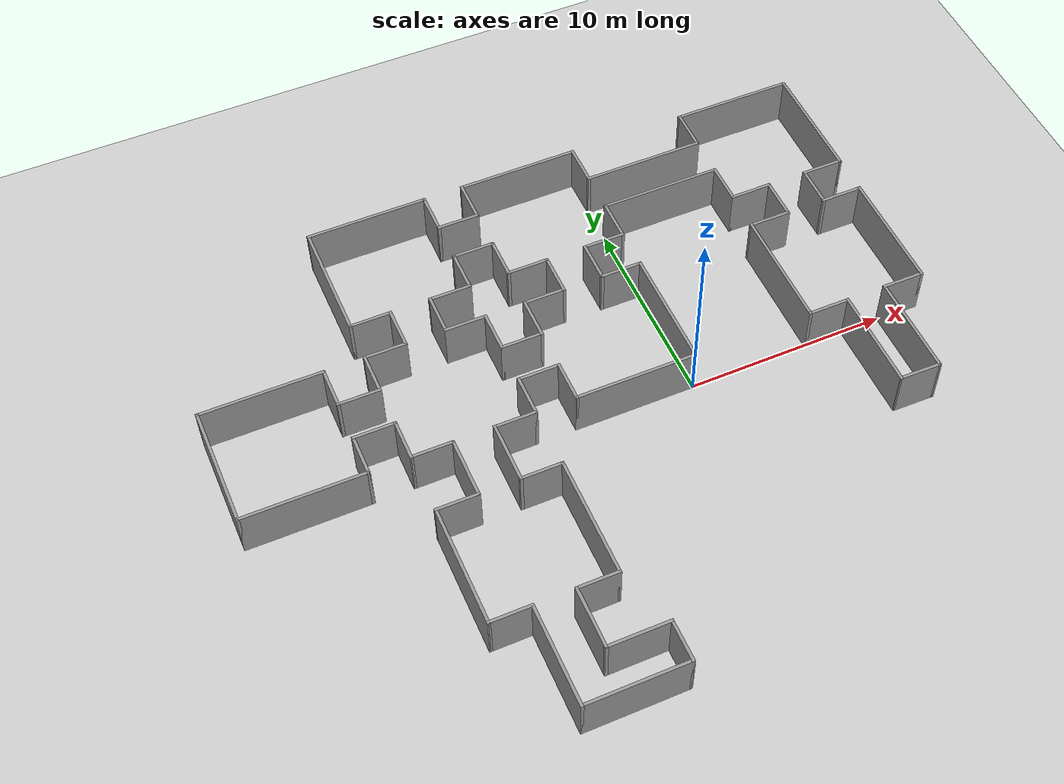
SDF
<sdf version="1.4">
 <world name="default">
  <light name="sun" type="directional">
   <pose>0 0 10 0 -0 0</pose>
   <diffuse>0.8 0.8 0.8 1</diffuse>
   <specular>0.2 0.2 0.2 1</specular>
   <attenuation>
    <range>1000</range>
    <constant>0.9</constant>
    <linear>0.01</linear>
    <quadratic>0.001</quadratic>
   </attenuation>
   <direction>-0.5 0.1 -0.9</direction>
   <spot><inner_angle>0</inner_angle><outer_angle>0</outer_angle><falloff>0</falloff></spot>
  </light>
  <model name="ground_plane">
   <static>1</static>
   <link name="link">
    <collision name="collision">
     <geometry><plane><normal>0 0 1</normal><size>100 100</size></plane></geometry>
     <surface>
      <contact><collide_bitmask>65535</collide_bitmask></contact>
      <friction><ode><mu>100</mu><mu2>50</mu2></ode></friction>
     </surface>
    </collision>
    <visual name="visual">
     <cast_shadows>0</cast_shadows>
     <geometry><plane><normal>0 0 1</normal><size>100 100</size></plane></geometry>
     <material>
      <script><uri>file://media/materials/scripts/gazebo.material</uri><name>Gazebo/Grey</name></script>
     </material>
    </visual>
   </link>
  </model>
  <gravity>0 0 -9.8</gravity>
  <magnetic_field>6e-06 2.3e-05 -4.2e-05</magnetic_field>
  <atmosphere type="adiabatic"/>
  <physics type="ode">
   <max_step_size>0.001</max_step_size>
   <real_time_factor>1</real_time_factor>
   <real_time_update_rate>1000</real_time_update_rate>
  </physics>
  <scene><ambient>0.4 0.4 0.4 1</ambient><background>0.7 0.7 0.7 1</background><shadows>1</shadows></scene>
  <spherical_coordinates>
   <surface_model>EARTH_WGS84</surface_model>
   <latitude_deg>0</latitude_deg>
   <longitude_deg>0</longitude_deg>
   <elevation>0</elevation>
   <heading_deg>0</heading_deg>
  </spherical_coordinates>
  <model name="Untitled">
   <pose>-5 -0 0 0 -0 0</pose>
   <link name="Wall_0">
    <collision name="Wall_0_Collision">
     <geometry><box><size>6.15 0.15 2.5</size></box></geometry>
     <pose>0 0 1.25 0 -0 0</pose>
    </collision>
    <visual name="Wall_0_Visual">
     <pose>0 0 1.25 0 -0 0</pose>
     <geometry><box><size>6.15 0.15 2.5</size></box></geometry>
     <material>
      <script><uri>file://media/materials/scripts/gazebo.material</uri><name>Gazebo/Grey</name></script>
      <ambient>1 1 1 1</ambient>
     </material>
     <meta><layer>0</layer></meta>
    </visual>
    <pose>5 3 0 0 -0 1.5708</pose>
   </link>
   <link name="Wall_1">
    <collision name="Wall_1_Collision">
     <geometry><box><size>2.15 0.15 2.5</size></box></geometry>
     <pose>0 0 1.25 0 -0 0</pose>
    </collision>
    <visual name="Wall_1_Visual">
     <pose>0 0 1.25 0 -0 0</pose>
     <geometry><box><size>2.15 0.15 2.5</size></box></geometry>
     <material>
      <script><uri>file://media/materials/scripts/gazebo.material</uri><name>Gazebo/Grey</name></script>
      <ambient>1 1 1 1</ambient>
     </material>
     <meta><layer>0</layer></meta>
    </visual>
    <pose>4 6 0 0 -0 3.14159</pose>
   </link>
   <link name="Wall_10">
    <collision name="Wall_10_Collision">
     <geometry><box><size>2.15 0.15 2.5</size></box></geometry>
     <pose>0 0 1.25 0 -0 0</pose>
    </collision>
    <visual name="Wall_10_Visual">
     <pose>0 0 1.25 0 -0 0</pose>
     <geometry><box><size>2.15 0.15 2.5</size></box></geometry>
     <material>
      <script><uri>file://media/materials/scripts/gazebo.material</uri><name>Gazebo/Grey</name></script>
      <ambient>1 1 1 1</ambient>
     </material>
     <meta><layer>0</layer></meta>
    </visual>
    <pose>12 6 0 0 -0 3.14159</pose>
   </link>
   <link name="Wall_100">
    <collision name="Wall_100_Collision">
     <geometry><box><size>2.15 0.15 2.5</size></box></geometry>
     <pose>0 0 1.25 0 -0 0</pose>
    </collision>
    <visual name="Wall_100_Visual">
     <pose>0 0 1.25 0 -0 0</pose>
     <geometry><box><size>2.15 0.15 2.5</size></box></geometry>
     <material>
      <script><uri>file://media/materials/scripts/gazebo.material</uri><name>Gazebo/Grey</name></script>
      <ambient>1 1 1 1</ambient>
     </material>
     <meta><layer>0</layer></meta>
    </visual>
    <pose>-2 2 0 0 -0 0</pose>
   </link>
   <link name="Wall_101">
    <collision name="Wall_101_Collision">
     <geometry><box><size>2.15 0.15 2.5</size></box></geometry>
     <pose>0 0 1.25 0 -0 0</pose>
    </collision>
    <visual name="Wall_101_Visual">
     <pose>0 0 1.25 0 -0 0</pose>
     <geometry><box><size>2.15 0.15 2.5</size></box></geometry>
     <material>
      <script><uri>file://media/materials/scripts/gazebo.material</uri><name>Gazebo/Grey</name></script>
      <ambient>1 1 1 1</ambient>
     </material>
     <meta><layer>0</layer></meta>
    </visual>
    <pose>-1 1 0 0 -0 -1.5708</pose>
   </link>
   <link name="Wall_102">
    <collision name="Wall_102_Collision">
     <geometry><box><size>6.15 0.15 2.5</size></box></geometry>
     <pose>0 0 1.25 0 -0 0</pose>
    </collision>
    <visual name="Wall_102_Visual">
     <pose>0 0 1.25 0 -0 0</pose>
     <geometry><box><size>6.15 0.15 2.5</size></box></geometry>
     <material>
      <script><uri>file://media/materials/scripts/gazebo.material</uri><name>Gazebo/Grey</name></script>
      <ambient>1 1 1 1</ambient>
     </material>
     <meta><layer>0</layer></meta>
    </visual>
    <pose>2 0 0 0 -0 0</pose>
   </link>
   <link name="Wall_105">
    <collision name="Wall_105_Collision">
     <geometry><box><size>2.15 0.15 2.5</size></box></geometry>
     <pose>0 0 1.25 0 -0 0</pose>
    </collision>
    <visual name="Wall_105_Visual">
     <pose>0 0 1.25 0 -0 0</pose>
     <geometry><box><size>2.15 0.15 2.5</size></box></geometry>
     <material>
      <script><uri>file://media/materials/scripts/gazebo.material</uri><name>Gazebo/Grey</name></script>
      <ambient>1 1 1 1</ambient>
     </material>
     <meta><layer>0</layer></meta>
    </visual>
    <pose>0 6 0 0 -0 0</pose>
   </link>
   <link name="Wall_106">
    <collision name="Wall_106_Collision">
     <geometry><box><size>2.15 0.15 2.5</size></box></geometry>
     <pose>0 0 1.25 0 -0 0</pose>
    </collision>
    <visual name="Wall_106_Visual">
     <pose>0 0 1.25 0 -0 0</pose>
     <geometry><box><size>2.15 0.15 2.5</size></box></geometry>
     <material>
      <script><uri>file://media/materials/scripts/gazebo.material</uri><name>Gazebo/Grey</name></script>
      <ambient>1 1 1 1</ambient>
     </material>
     <meta><layer>0</layer></meta>
    </visual>
    <pose>1 7 0 0 -0 1.5708</pose>
   </link>
   <link name="Wall_107">
    <collision name="Wall_107_Collision">
     <geometry><box><size>2.15 0.15 2.5</size></box></geometry>
     <pose>0 0 1.25 0 -0 0</pose>
    </collision>
    <visual name="Wall_107_Visual">
     <pose>0 0 1.25 0 -0 0</pose>
     <geometry><box><size>2.15 0.15 2.5</size></box></geometry>
     <material>
      <script><uri>file://media/materials/scripts/gazebo.material</uri><name>Gazebo/Grey</name></script>
      <ambient>1 1 1 1</ambient>
     </material>
     <meta><layer>0</layer></meta>
    </visual>
    <pose>0 8 0 0 -0 3.14159</pose>
   </link>
   <link name="Wall_108">
    <collision name="Wall_108_Collision">
     <geometry><box><size>2.15 0.15 2.5</size></box></geometry>
     <pose>0 0 1.25 0 -0 0</pose>
    </collision>
    <visual name="Wall_108_Visual">
     <pose>0 0 1.25 0 -0 0</pose>
     <geometry><box><size>2.15 0.15 2.5</size></box></geometry>
     <material>
      <script><uri>file://media/materials/scripts/gazebo.material</uri><name>Gazebo/Grey</name></script>
      <ambient>1 1 1 1</ambient>
     </material>
     <meta><layer>0</layer></meta>
    </visual>
    <pose>-1 9 0 0 -0 1.5708</pose>
   </link>
   <link name="Wall_109">
    <collision name="Wall_109_Collision">
     <geometry><box><size>2.15 0.15 2.5</size></box></geometry>
     <pose>0 0 1.25 0 -0 0</pose>
    </collision>
    <visual name="Wall_109_Visual">
     <pose>0 0 1.25 0 -0 0</pose>
     <geometry><box><size>2.15 0.15 2.5</size></box></geometry>
     <material>
      <script><uri>file://media/materials/scripts/gazebo.material</uri><name>Gazebo/Grey</name></script>
      <ambient>1 1 1 1</ambient>
     </material>
     <meta><layer>0</layer></meta>
    </visual>
    <pose>-2 10 0 0 -0 3.14159</pose>
   </link>
   <link name="Wall_11">
    <collision name="Wall_11_Collision">
     <geometry><box><size>6.15 0.15 2.5</size></box></geometry>
     <pose>0 0 1.25 0 -0 0</pose>
    </collision>
    <visual name="Wall_11_Visual">
     <pose>0 0 1.25 0 -0 0</pose>
     <geometry><box><size>6.15 0.15 2.5</size></box></geometry>
     <material>
      <script><uri>file://media/materials/scripts/gazebo.material</uri><name>Gazebo/Grey</name></script>
      <ambient>1 1 1 1</ambient>
     </material>
     <meta><layer>0</layer></meta>
    </visual>
    <pose>11 3 0 0 -0 -1.5708</pose>
   </link>
   <link name="Wall_110">
    <collision name="Wall_110_Collision">
     <geometry><box><size>2.15 0.15 2.5</size></box></geometry>
     <pose>0 0 1.25 0 -0 0</pose>
    </collision>
    <visual name="Wall_110_Visual">
     <pose>0 0 1.25 0 -0 0</pose>
     <geometry><box><size>2.15 0.15 2.5</size></box></geometry>
     <material>
      <script><uri>file://media/materials/scripts/gazebo.material</uri><name>Gazebo/Grey</name></script>
      <ambient>1 1 1 1</ambient>
     </material>
     <meta><layer>0</layer></meta>
    </visual>
    <pose>-3 9 0 0 -0 -1.5708</pose>
   </link>
   <link name="Wall_111">
    <collision name="Wall_111_Collision">
     <geometry><box><size>2.15 0.15 2.5</size></box></geometry>
     <pose>0 0 1.25 0 -0 0</pose>
    </collision>
    <visual name="Wall_111_Visual">
     <pose>0 0 1.25 0 -0 0</pose>
     <geometry><box><size>2.15 0.15 2.5</size></box></geometry>
     <material>
      <script><uri>file://media/materials/scripts/gazebo.material</uri><name>Gazebo/Grey</name></script>
      <ambient>1 1 1 1</ambient>
     </material>
     <meta><layer>0</layer></meta>
    </visual>
    <pose>-4 8 0 0 -0 3.14159</pose>
   </link>
   <link name="Wall_112">
    <collision name="Wall_112_Collision">
     <geometry><box><size>2.15 0.15 2.5</size></box></geometry>
     <pose>0 0 1.25 0 -0 0</pose>
    </collision>
    <visual name="Wall_112_Visual">
     <pose>0 0 1.25 0 -0 0</pose>
     <geometry><box><size>2.15 0.15 2.5</size></box></geometry>
     <material>
      <script><uri>file://media/materials/scripts/gazebo.material</uri><name>Gazebo/Grey</name></script>
      <ambient>1 1 1 1</ambient>
     </material>
     <meta><layer>0</layer></meta>
    </visual>
    <pose>-5 7 0 0 -0 -1.5708</pose>
   </link>
   <link name="Wall_113">
    <collision name="Wall_113_Collision">
     <geometry><box><size>2.15 0.15 2.5</size></box></geometry>
     <pose>0 0 1.25 0 -0 0</pose>
    </collision>
    <visual name="Wall_113_Visual">
     <pose>0 0 1.25 0 -0 0</pose>
     <geometry><box><size>2.15 0.15 2.5</size></box></geometry>
     <material>
      <script><uri>file://media/materials/scripts/gazebo.material</uri><name>Gazebo/Grey</name></script>
      <ambient>1 1 1 1</ambient>
     </material>
     <meta><layer>0</layer></meta>
    </visual>
    <pose>-4 6 0 0 -0 0</pose>
   </link>
   <link name="Wall_114">
    <collision name="Wall_114_Collision">
     <geometry><box><size>2.15 0.15 2.5</size></box></geometry>
     <pose>0 0 1.25 0 -0 0</pose>
    </collision>
    <visual name="Wall_114_Visual">
     <pose>0 0 1.25 0 -0 0</pose>
     <geometry><box><size>2.15 0.15 2.5</size></box></geometry>
     <material>
      <script><uri>file://media/materials/scripts/gazebo.material</uri><name>Gazebo/Grey</name></script>
      <ambient>1 1 1 1</ambient>
     </material>
     <meta><layer>0</layer></meta>
    </visual>
    <pose>-3 5 0 0 -0 -1.5708</pose>
   </link>
   <link name="Wall_115">
    <collision name="Wall_115_Collision">
     <geometry><box><size>2.15 0.15 2.5</size></box></geometry>
     <pose>0 0 1.25 0 -0 0</pose>
    </collision>
    <visual name="Wall_115_Visual">
     <pose>0 0 1.25 0 -0 0</pose>
     <geometry><box><size>2.15 0.15 2.5</size></box></geometry>
     <material>
      <script><uri>file://media/materials/scripts/gazebo.material</uri><name>Gazebo/Grey</name></script>
      <ambient>1 1 1 1</ambient>
     </material>
     <meta><layer>0</layer></meta>
    </visual>
    <pose>-2 4 0 0 -0 0</pose>
   </link>
   <link name="Wall_116">
    <collision name="Wall_116_Collision">
     <geometry><box><size>2.15 0.15 2.5</size></box></geometry>
     <pose>0 0 1.25 0 -0 0</pose>
    </collision>
    <visual name="Wall_116_Visual">
     <pose>0 0 1.25 0 -0 0</pose>
     <geometry><box><size>2.15 0.15 2.5</size></box></geometry>
     <material>
      <script><uri>file://media/materials/scripts/gazebo.material</uri><name>Gazebo/Grey</name></script>
      <ambient>1 1 1 1</ambient>
     </material>
     <meta><layer>0</layer></meta>
    </visual>
    <pose>-1 5 0 0 -0 1.5708</pose>
   </link>
   <link name="Wall_12">
    <collision name="Wall_12_Collision">
     <geometry><box><size>2.15 0.15 2.5</size></box></geometry>
     <pose>0 0 1.25 0 -0 0</pose>
    </collision>
    <visual name="Wall_12_Visual">
     <pose>0 0 1.25 0 -0 0</pose>
     <geometry><box><size>2.15 0.15 2.5</size></box></geometry>
     <material>
      <script><uri>file://media/materials/scripts/gazebo.material</uri><name>Gazebo/Grey</name></script>
      <ambient>1 1 1 1</ambient>
     </material>
     <meta><layer>0</layer></meta>
    </visual>
    <pose>12 0 0 0 -0 0</pose>
   </link>
   <link name="Wall_13">
    <collision name="Wall_13_Collision">
     <geometry><box><size>5.15 0.15 2.5</size></box></geometry>
     <pose>0 0 1.25 0 -0 0</pose>
    </collision>
    <visual name="Wall_13_Visual">
     <pose>0 0 1.25 0 -0 0</pose>
     <geometry><box><size>5.15 0.15 2.5</size></box></geometry>
     <material>
      <script><uri>file://media/materials/scripts/gazebo.material</uri><name>Gazebo/Grey</name></script>
      <ambient>1 1 1 1</ambient>
     </material>
     <meta><layer>0</layer></meta>
    </visual>
    <pose>13 -2.5 0 0 -0 -1.5708</pose>
   </link>
   <link name="Wall_14">
    <collision name="Wall_14_Collision">
     <geometry><box><size>2.15 0.15 2.5</size></box></geometry>
     <pose>0 0 1.25 0 -0 0</pose>
    </collision>
    <visual name="Wall_14_Visual">
     <pose>0 0 1.25 0 -0 0</pose>
     <geometry><box><size>2.15 0.15 2.5</size></box></geometry>
     <material>
      <script><uri>file://media/materials/scripts/gazebo.material</uri><name>Gazebo/Grey</name></script>
      <ambient>1 1 1 1</ambient>
     </material>
     <meta><layer>0</layer></meta>
    </visual>
    <pose>14 -5.0155 0 0 -0 -0.015499</pose>
   </link>
   <link name="Wall_15">
    <collision name="Wall_15_Collision">
     <geometry><box><size>5.181 0.15 2.5</size></box></geometry>
     <pose>0 0 1.25 0 -0 0</pose>
    </collision>
    <visual name="Wall_15_Visual">
     <pose>0 0 1.25 0 -0 0</pose>
     <geometry><box><size>5.181 0.15 2.5</size></box></geometry>
     <material>
      <script><uri>file://media/materials/scripts/gazebo.material</uri><name>Gazebo/Grey</name></script>
      <ambient>1 1 1 1</ambient>
     </material>
     <meta><layer>0</layer></meta>
    </visual>
    <pose>15 -2.5155 0 0 -0 1.5708</pose>
   </link>
   <link name="Wall_16">
    <collision name="Wall_16_Collision">
     <geometry><box><size>2.15 0.15 2.5</size></box></geometry>
     <pose>0 0 1.25 0 -0 0</pose>
    </collision>
    <visual name="Wall_16_Visual">
     <pose>0 0 1.25 0 -0 0</pose>
     <geometry><box><size>2.15 0.15 2.5</size></box></geometry>
     <material>
      <script><uri>file://media/materials/scripts/gazebo.material</uri><name>Gazebo/Grey</name></script>
      <ambient>1 1 1 1</ambient>
     </material>
     <meta><layer>0</layer></meta>
    </visual>
    <pose>16 0 0 0 -0 0</pose>
   </link>
   <link name="Wall_17">
    <collision name="Wall_17_Collision">
     <geometry><box><size>6.15 0.15 2.5</size></box></geometry>
     <pose>0 0 1.25 0 -0 0</pose>
    </collision>
    <visual name="Wall_17_Visual">
     <pose>0 0 1.25 0 -0 0</pose>
     <geometry><box><size>6.15 0.15 2.5</size></box></geometry>
     <material>
      <script><uri>file://media/materials/scripts/gazebo.material</uri><name>Gazebo/Grey</name></script>
      <ambient>1 1 1 1</ambient>
     </material>
     <meta><layer>0</layer></meta>
    </visual>
    <pose>17 3 0 0 -0 1.5708</pose>
   </link>
   <link name="Wall_18">
    <collision name="Wall_18_Collision">
     <geometry><box><size>2.15 0.15 2.5</size></box></geometry>
     <pose>0 0 1.25 0 -0 0</pose>
    </collision>
    <visual name="Wall_18_Visual">
     <pose>0 0 1.25 0 -0 0</pose>
     <geometry><box><size>2.15 0.15 2.5</size></box></geometry>
     <material>
      <script><uri>file://media/materials/scripts/gazebo.material</uri><name>Gazebo/Grey</name></script>
      <ambient>1 1 1 1</ambient>
     </material>
     <meta><layer>0</layer></meta>
    </visual>
    <pose>16 6 0 0 -0 3.14159</pose>
   </link>
   <link name="Wall_19">
    <collision name="Wall_19_Collision">
     <geometry><box><size>2.15 0.15 2.5</size></box></geometry>
     <pose>0 0 1.25 0 -0 0</pose>
    </collision>
    <visual name="Wall_19_Visual">
     <pose>0 0 1.25 0 -0 0</pose>
     <geometry><box><size>2.15 0.15 2.5</size></box></geometry>
     <material>
      <script><uri>file://media/materials/scripts/gazebo.material</uri><name>Gazebo/Grey</name></script>
      <ambient>1 1 1 1</ambient>
     </material>
     <meta><layer>0</layer></meta>
    </visual>
    <pose>15 7 0 0 -0 1.5708</pose>
   </link>
   <link name="Wall_2">
    <collision name="Wall_2_Collision">
     <geometry><box><size>2.15 0.15 2.5</size></box></geometry>
     <pose>0 0 1.25 0 -0 0</pose>
    </collision>
    <visual name="Wall_2_Visual">
     <pose>0 0 1.25 0 -0 0</pose>
     <geometry><box><size>2.15 0.15 2.5</size></box></geometry>
     <material>
      <script><uri>file://media/materials/scripts/gazebo.material</uri><name>Gazebo/Grey</name></script>
      <ambient>1 1 1 1</ambient>
     </material>
     <meta><layer>0</layer></meta>
    </visual>
    <pose>3 7 0 0 -0 1.5708</pose>
   </link>
   <link name="Wall_20">
    <collision name="Wall_20_Collision">
     <geometry><box><size>2.15 0.15 2.5</size></box></geometry>
     <pose>0 0 1.25 0 -0 0</pose>
    </collision>
    <visual name="Wall_20_Visual">
     <pose>0 0 1.25 0 -0 0</pose>
     <geometry><box><size>2.15 0.15 2.5</size></box></geometry>
     <material>
      <script><uri>file://media/materials/scripts/gazebo.material</uri><name>Gazebo/Grey</name></script>
      <ambient>1 1 1 1</ambient>
     </material>
     <meta><layer>0</layer></meta>
    </visual>
    <pose>16 8 0 0 -0 0</pose>
   </link>
   <link name="Wall_21">
    <collision name="Wall_21_Collision">
     <geometry><box><size>6.15 0.15 2.5</size></box></geometry>
     <pose>0 0 1.25 0 -0 0</pose>
    </collision>
    <visual name="Wall_21_Visual">
     <pose>0 0 1.25 0 -0 0</pose>
     <geometry><box><size>6.15 0.15 2.5</size></box></geometry>
     <material>
      <script><uri>file://media/materials/scripts/gazebo.material</uri><name>Gazebo/Grey</name></script>
      <ambient>1 1 1 1</ambient>
     </material>
     <meta><layer>0</layer></meta>
    </visual>
    <pose>17 11 0 0 -0 1.5708</pose>
   </link>
   <link name="Wall_22">
    <collision name="Wall_22_Collision">
     <geometry><box><size>6.15 0.15 2.5</size></box></geometry>
     <pose>0 0 1.25 0 -0 0</pose>
    </collision>
    <visual name="Wall_22_Visual">
     <pose>0 0 1.25 0 -0 0</pose>
     <geometry><box><size>6.15 0.15 2.5</size></box></geometry>
     <material>
      <script><uri>file://media/materials/scripts/gazebo.material</uri><name>Gazebo/Grey</name></script>
      <ambient>1 1 1 1</ambient>
     </material>
     <meta><layer>0</layer></meta>
    </visual>
    <pose>14 14 0 0 -0 3.14159</pose>
   </link>
   <link name="Wall_23">
    <collision name="Wall_23_Collision">
     <geometry><box><size>2.15 0.15 2.5</size></box></geometry>
     <pose>0 0 1.25 0 -0 0</pose>
    </collision>
    <visual name="Wall_23_Visual">
     <pose>0 0 1.25 0 -0 0</pose>
     <geometry><box><size>2.15 0.15 2.5</size></box></geometry>
     <material>
      <script><uri>file://media/materials/scripts/gazebo.material</uri><name>Gazebo/Grey</name></script>
      <ambient>1 1 1 1</ambient>
     </material>
     <meta><layer>0</layer></meta>
    </visual>
    <pose>11 13 0 0 -0 -1.5708</pose>
   </link>
   <link name="Wall_24">
    <collision name="Wall_24_Collision">
     <geometry><box><size>6.15 0.15 2.5</size></box></geometry>
     <pose>0 0 1.25 0 -0 0</pose>
    </collision>
    <visual name="Wall_24_Visual">
     <pose>0 0 1.25 0 -0 0</pose>
     <geometry><box><size>6.15 0.15 2.5</size></box></geometry>
     <material>
      <script><uri>file://media/materials/scripts/gazebo.material</uri><name>Gazebo/Grey</name></script>
      <ambient>1 1 1 1</ambient>
     </material>
     <meta><layer>0</layer></meta>
    </visual>
    <pose>8 12 0 0 -0 3.14159</pose>
   </link>
   <link name="Wall_25">
    <collision name="Wall_25_Collision">
     <geometry><box><size>2.15 0.15 2.5</size></box></geometry>
     <pose>0 0 1.25 0 -0 0</pose>
    </collision>
    <visual name="Wall_25_Visual">
     <pose>0 0 1.25 0 -0 0</pose>
     <geometry><box><size>2.15 0.15 2.5</size></box></geometry>
     <material>
      <script><uri>file://media/materials/scripts/gazebo.material</uri><name>Gazebo/Grey</name></script>
      <ambient>1 1 1 1</ambient>
     </material>
     <meta><layer>0</layer></meta>
    </visual>
    <pose>5 13 0 0 -0 1.5708</pose>
   </link>
   <link name="Wall_26">
    <collision name="Wall_26_Collision">
     <geometry><box><size>6.15 0.15 2.5</size></box></geometry>
     <pose>0 0 1.25 0 -0 0</pose>
    </collision>
    <visual name="Wall_26_Visual">
     <pose>0 0 1.25 0 -0 0</pose>
     <geometry><box><size>6.15 0.15 2.5</size></box></geometry>
     <material>
      <script><uri>file://media/materials/scripts/gazebo.material</uri><name>Gazebo/Grey</name></script>
      <ambient>1 1 1 1</ambient>
     </material>
     <meta><layer>0</layer></meta>
    </visual>
    <pose>2 14 0 0 -0 3.14159</pose>
   </link>
   <link name="Wall_27">
    <collision name="Wall_27_Collision">
     <geometry><box><size>2.15 0.15 2.5</size></box></geometry>
     <pose>0 0 1.25 0 -0 0</pose>
    </collision>
    <visual name="Wall_27_Visual">
     <pose>0 0 1.25 0 -0 0</pose>
     <geometry><box><size>2.15 0.15 2.5</size></box></geometry>
     <material>
      <script><uri>file://media/materials/scripts/gazebo.material</uri><name>Gazebo/Grey</name></script>
      <ambient>1 1 1 1</ambient>
     </material>
     <meta><layer>0</layer></meta>
    </visual>
    <pose>-1 13 0 0 -0 -1.5708</pose>
   </link>
   <link name="Wall_28">
    <collision name="Wall_28_Collision">
     <geometry><box><size>2.15 0.15 2.5</size></box></geometry>
     <pose>0 0 1.25 0 -0 0</pose>
    </collision>
    <visual name="Wall_28_Visual">
     <pose>0 0 1.25 0 -0 0</pose>
     <geometry><box><size>2.15 0.15 2.5</size></box></geometry>
     <material>
      <script><uri>file://media/materials/scripts/gazebo.material</uri><name>Gazebo/Grey</name></script>
      <ambient>1 1 1 1</ambient>
     </material>
     <meta><layer>0</layer></meta>
    </visual>
    <pose>-2 12 0 0 -0 3.14159</pose>
   </link>
   <link name="Wall_29">
    <collision name="Wall_29_Collision">
     <geometry><box><size>2.15 0.15 2.5</size></box></geometry>
     <pose>0 0 1.25 0 -0 0</pose>
    </collision>
    <visual name="Wall_29_Visual">
     <pose>0 0 1.25 0 -0 0</pose>
     <geometry><box><size>2.15 0.15 2.5</size></box></geometry>
     <material>
      <script><uri>file://media/materials/scripts/gazebo.material</uri><name>Gazebo/Grey</name></script>
      <ambient>1 1 1 1</ambient>
     </material>
     <meta><layer>0</layer></meta>
    </visual>
    <pose>-3 13 0 0 -0 1.5708</pose>
   </link>
   <link name="Wall_3">
    <collision name="Wall_3_Collision">
     <geometry><box><size>2.15 0.15 2.5</size></box></geometry>
     <pose>0 0 1.25 0 -0 0</pose>
    </collision>
    <visual name="Wall_3_Visual">
     <pose>0 0 1.25 0 -0 0</pose>
     <geometry><box><size>2.15 0.15 2.5</size></box></geometry>
     <material>
      <script><uri>file://media/materials/scripts/gazebo.material</uri><name>Gazebo/Grey</name></script>
      <ambient>1 1 1 1</ambient>
     </material>
     <meta><layer>0</layer></meta>
    </visual>
    <pose>4 8 0 0 -0 0</pose>
   </link>
   <link name="Wall_4">
    <collision name="Wall_4_Collision">
     <geometry><box><size>2.15 0.15 2.5</size></box></geometry>
     <pose>0 0 1.25 0 -0 0</pose>
    </collision>
    <visual name="Wall_4_Visual">
     <pose>0 0 1.25 0 -0 0</pose>
     <geometry><box><size>2.15 0.15 2.5</size></box></geometry>
     <material>
      <script><uri>file://media/materials/scripts/gazebo.material</uri><name>Gazebo/Grey</name></script>
      <ambient>1 1 1 1</ambient>
     </material>
     <meta><layer>0</layer></meta>
    </visual>
    <pose>5 9 0 0 -0 1.5708</pose>
   </link>
   <link name="Wall_5">
    <collision name="Wall_5_Collision">
     <geometry><box><size>6.15 0.15 2.5</size></box></geometry>
     <pose>0 0 1.25 0 -0 0</pose>
    </collision>
    <visual name="Wall_5_Visual">
     <pose>0 0 1.25 0 -0 0</pose>
     <geometry><box><size>6.15 0.15 2.5</size></box></geometry>
     <material>
      <script><uri>file://media/materials/scripts/gazebo.material</uri><name>Gazebo/Grey</name></script>
      <ambient>1 1 1 1</ambient>
     </material>
     <meta><layer>0</layer></meta>
    </visual>
    <pose>8 10 0 0 -0 0</pose>
   </link>
   <link name="Wall_65">
    <collision name="Wall_65_Collision">
     <geometry><box><size>2.15 0.15 2.5</size></box></geometry>
     <pose>0 0 1.25 0 -0 0</pose>
    </collision>
    <visual name="Wall_65_Visual">
     <pose>0 0 1.25 0 -0 0</pose>
     <geometry><box><size>2.15 0.15 2.5</size></box></geometry>
     <material>
      <script><uri>file://media/materials/scripts/gazebo.material</uri><name>Gazebo/Grey</name></script>
      <ambient>1 1 1 1</ambient>
     </material>
     <meta><layer>0</layer></meta>
    </visual>
    <pose>11 9 0 0 -0 -1.5708</pose>
   </link>
   <link name="Wall_67">
    <collision name="Wall_67_Collision">
     <geometry><box><size>6.15 0.15 2.5</size></box></geometry>
     <pose>0 0 1.25 0 -0 0</pose>
    </collision>
    <visual name="Wall_67_Visual">
     <pose>0 0 1.25 0 -0 0</pose>
     <geometry><box><size>6.15 0.15 2.5</size></box></geometry>
     <material>
      <script><uri>file://media/materials/scripts/gazebo.material</uri><name>Gazebo/Grey</name></script>
      <ambient>1 1 1 1</ambient>
     </material>
     <meta><layer>0</layer></meta>
    </visual>
    <pose>-6 14 0 0 -0 3.14159</pose>
   </link>
   <link name="Wall_68">
    <collision name="Wall_68_Collision">
     <geometry><box><size>6.15 0.15 2.5</size></box></geometry>
     <pose>0 0 1.25 0 -0 0</pose>
    </collision>
    <visual name="Wall_68_Visual">
     <pose>0 0 1.25 0 -0 0</pose>
     <geometry><box><size>6.15 0.15 2.5</size></box></geometry>
     <material>
      <script><uri>file://media/materials/scripts/gazebo.material</uri><name>Gazebo/Grey</name></script>
      <ambient>1 1 1 1</ambient>
     </material>
     <meta><layer>0</layer></meta>
    </visual>
    <pose>-9 11 0 0 -0 -1.5708</pose>
   </link>
   <link name="Wall_7">
    <collision name="Wall_7_Collision">
     <geometry><box><size>0.15 0.15 2.5</size></box></geometry>
     <pose>0 0 1.25 0 -0 0</pose>
    </collision>
    <visual name="Wall_7_Visual">
     <pose>0 0 1.25 0 -0 0</pose>
     <geometry><box><size>0.15 0.15 2.5</size></box></geometry>
     <material>
      <script><uri>file://media/materials/scripts/gazebo.material</uri><name>Gazebo/Grey</name></script>
      <ambient>1 1 1 1</ambient>
     </material>
     <meta><layer>0</layer></meta>
    </visual>
    <pose>11 8 0 0 -0 0</pose>
   </link>
   <link name="Wall_72">
    <collision name="Wall_72_Collision">
     <geometry><box><size>2.15 0.15 2.5</size></box></geometry>
     <pose>0 0 1.25 0 -0 0</pose>
    </collision>
    <visual name="Wall_72_Visual">
     <pose>0 0 1.25 0 -0 0</pose>
     <geometry><box><size>2.15 0.15 2.5</size></box></geometry>
     <material>
      <script><uri>file://media/materials/scripts/gazebo.material</uri><name>Gazebo/Grey</name></script>
      <ambient>1 1 1 1</ambient>
     </material>
     <meta><layer>0</layer></meta>
    </visual>
    <pose>-8 8 0 0 -0 0</pose>
   </link>
   <link name="Wall_73">
    <collision name="Wall_73_Collision">
     <geometry><box><size>2.15 0.15 2.5</size></box></geometry>
     <pose>0 0 1.25 0 -0 0</pose>
    </collision>
    <visual name="Wall_73_Visual">
     <pose>0 0 1.25 0 -0 0</pose>
     <geometry><box><size>2.15 0.15 2.5</size></box></geometry>
     <material>
      <script><uri>file://media/materials/scripts/gazebo.material</uri><name>Gazebo/Grey</name></script>
      <ambient>1 1 1 1</ambient>
     </material>
     <meta><layer>0</layer></meta>
    </visual>
    <pose>-7 7 0 0 -0 -1.5708</pose>
   </link>
   <link name="Wall_74">
    <collision name="Wall_74_Collision">
     <geometry><box><size>2.15 0.15 2.5</size></box></geometry>
     <pose>0 0 1.25 0 -0 0</pose>
    </collision>
    <visual name="Wall_74_Visual">
     <pose>0 0 1.25 0 -0 0</pose>
     <geometry><box><size>2.15 0.15 2.5</size></box></geometry>
     <material>
      <script><uri>file://media/materials/scripts/gazebo.material</uri><name>Gazebo/Grey</name></script>
      <ambient>1 1 1 1</ambient>
     </material>
     <meta><layer>0</layer></meta>
    </visual>
    <pose>-8 6 0 0 -0 3.14159</pose>
   </link>
   <link name="Wall_75">
    <collision name="Wall_75_Collision">
     <geometry><box><size>2.15 0.15 2.5</size></box></geometry>
     <pose>0 0 1.25 0 -0 0</pose>
    </collision>
    <visual name="Wall_75_Visual">
     <pose>0 0 1.25 0 -0 0</pose>
     <geometry><box><size>2.15 0.15 2.5</size></box></geometry>
     <material>
      <script><uri>file://media/materials/scripts/gazebo.material</uri><name>Gazebo/Grey</name></script>
      <ambient>1 1 1 1</ambient>
     </material>
     <meta><layer>0</layer></meta>
    </visual>
    <pose>-9 5 0 0 -0 -1.5708</pose>
   </link>
   <link name="Wall_76">
    <collision name="Wall_76_Collision">
     <geometry><box><size>2.15 0.15 2.5</size></box></geometry>
     <pose>0 0 1.25 0 -0 0</pose>
    </collision>
    <visual name="Wall_76_Visual">
     <pose>0 0 1.25 0 -0 0</pose>
     <geometry><box><size>2.15 0.15 2.5</size></box></geometry>
     <material>
      <script><uri>file://media/materials/scripts/gazebo.material</uri><name>Gazebo/Grey</name></script>
      <ambient>1 1 1 1</ambient>
     </material>
     <meta><layer>0</layer></meta>
    </visual>
    <pose>-10 4 0 0 -0 3.14159</pose>
   </link>
   <link name="Wall_77">
    <collision name="Wall_77_Collision">
     <geometry><box><size>2.15 0.15 2.5</size></box></geometry>
     <pose>0 0 1.25 0 -0 0</pose>
    </collision>
    <visual name="Wall_77_Visual">
     <pose>0 0 1.25 0 -0 0</pose>
     <geometry><box><size>2.15 0.15 2.5</size></box></geometry>
     <material>
      <script><uri>file://media/materials/scripts/gazebo.material</uri><name>Gazebo/Grey</name></script>
      <ambient>1 1 1 1</ambient>
     </material>
     <meta><layer>0</layer></meta>
    </visual>
    <pose>-11 5 0 0 -0 1.5708</pose>
   </link>
   <link name="Wall_78">
    <collision name="Wall_78_Collision">
     <geometry><box><size>6.15 0.15 2.5</size></box></geometry>
     <pose>0 0 1.25 0 -0 0</pose>
    </collision>
    <visual name="Wall_78_Visual">
     <pose>0 0 1.25 0 -0 0</pose>
     <geometry><box><size>6.15 0.15 2.5</size></box></geometry>
     <material>
      <script><uri>file://media/materials/scripts/gazebo.material</uri><name>Gazebo/Grey</name></script>
      <ambient>1 1 1 1</ambient>
     </material>
     <meta><layer>0</layer></meta>
    </visual>
    <pose>-14 6 0 0 -0 3.14159</pose>
   </link>
   <link name="Wall_79">
    <collision name="Wall_79_Collision">
     <geometry><box><size>6.15 0.15 2.5</size></box></geometry>
     <pose>0 0 1.25 0 -0 0</pose>
    </collision>
    <visual name="Wall_79_Visual">
     <pose>0 0 1.25 0 -0 0</pose>
     <geometry><box><size>6.15 0.15 2.5</size></box></geometry>
     <material>
      <script><uri>file://media/materials/scripts/gazebo.material</uri><name>Gazebo/Grey</name></script>
      <ambient>1 1 1 1</ambient>
     </material>
     <meta><layer>0</layer></meta>
    </visual>
    <pose>-17 3 0 0 -0 -1.5708</pose>
   </link>
   <link name="Wall_8">
    <collision name="Wall_8_Collision">
     <geometry><box><size>2.15 0.15 2.5</size></box></geometry>
     <pose>0 0 1.25 0 -0 0</pose>
    </collision>
    <visual name="Wall_8_Visual">
     <pose>0 0 1.25 0 -0 0</pose>
     <geometry><box><size>2.15 0.15 2.5</size></box></geometry>
     <material>
      <script><uri>file://media/materials/scripts/gazebo.material</uri><name>Gazebo/Grey</name></script>
      <ambient>1 1 1 1</ambient>
     </material>
     <meta><layer>0</layer></meta>
    </visual>
    <pose>12 8 0 0 -0 0</pose>
   </link>
   <link name="Wall_80">
    <collision name="Wall_80_Collision">
     <geometry><box><size>6.15 0.15 2.5</size></box></geometry>
     <pose>0 0 1.25 0 -0 0</pose>
    </collision>
    <visual name="Wall_80_Visual">
     <pose>0 0 1.25 0 -0 0</pose>
     <geometry><box><size>6.15 0.15 2.5</size></box></geometry>
     <material>
      <script><uri>file://media/materials/scripts/gazebo.material</uri><name>Gazebo/Grey</name></script>
      <ambient>1 1 1 1</ambient>
     </material>
     <meta><layer>0</layer></meta>
    </visual>
    <pose>-14 0 0 0 -0 0</pose>
   </link>
   <link name="Wall_81">
    <collision name="Wall_81_Collision">
     <geometry><box><size>2.15 0.15 2.5</size></box></geometry>
     <pose>0 0 1.25 0 -0 0</pose>
    </collision>
    <visual name="Wall_81_Visual">
     <pose>0 0 1.25 0 -0 0</pose>
     <geometry><box><size>2.15 0.15 2.5</size></box></geometry>
     <material>
      <script><uri>file://media/materials/scripts/gazebo.material</uri><name>Gazebo/Grey</name></script>
      <ambient>1 1 1 1</ambient>
     </material>
     <meta><layer>0</layer></meta>
    </visual>
    <pose>-11 1 0 0 -0 1.5708</pose>
   </link>
   <link name="Wall_82">
    <collision name="Wall_82_Collision">
     <geometry><box><size>2.15 0.15 2.5</size></box></geometry>
     <pose>0 0 1.25 0 -0 0</pose>
    </collision>
    <visual name="Wall_82_Visual">
     <pose>0 0 1.25 0 -0 0</pose>
     <geometry><box><size>2.15 0.15 2.5</size></box></geometry>
     <material>
      <script><uri>file://media/materials/scripts/gazebo.material</uri><name>Gazebo/Grey</name></script>
      <ambient>1 1 1 1</ambient>
     </material>
     <meta><layer>0</layer></meta>
    </visual>
    <pose>-10 2 0 0 -0 0</pose>
   </link>
   <link name="Wall_83">
    <collision name="Wall_83_Collision">
     <geometry><box><size>2.15 0.15 2.5</size></box></geometry>
     <pose>0 0 1.25 0 -0 0</pose>
    </collision>
    <visual name="Wall_83_Visual">
     <pose>0 0 1.25 0 -0 0</pose>
     <geometry><box><size>2.15 0.15 2.5</size></box></geometry>
     <material>
      <script><uri>file://media/materials/scripts/gazebo.material</uri><name>Gazebo/Grey</name></script>
      <ambient>1 1 1 1</ambient>
     </material>
     <meta><layer>0</layer></meta>
    </visual>
    <pose>-9 1 0 0 -0 -1.5708</pose>
   </link>
   <link name="Wall_84">
    <collision name="Wall_84_Collision">
     <geometry><box><size>2.15 0.15 2.5</size></box></geometry>
     <pose>0 0 1.25 0 -0 0</pose>
    </collision>
    <visual name="Wall_84_Visual">
     <pose>0 0 1.25 0 -0 0</pose>
     <geometry><box><size>2.15 0.15 2.5</size></box></geometry>
     <material>
      <script><uri>file://media/materials/scripts/gazebo.material</uri><name>Gazebo/Grey</name></script>
      <ambient>1 1 1 1</ambient>
     </material>
     <meta><layer>0</layer></meta>
    </visual>
    <pose>-8 0 0 0 -0 0</pose>
   </link>
   <link name="Wall_85">
    <collision name="Wall_85_Collision">
     <geometry><box><size>3.15 0.15 2.5</size></box></geometry>
     <pose>0 0 1.25 0 -0 0</pose>
    </collision>
    <visual name="Wall_85_Visual">
     <pose>0 0 1.25 0 -0 0</pose>
     <geometry><box><size>3.15 0.15 2.5</size></box></geometry>
     <material>
      <script><uri>file://media/materials/scripts/gazebo.material</uri><name>Gazebo/Grey</name></script>
      <ambient>1 1 1 1</ambient>
     </material>
     <meta><layer>0</layer></meta>
    </visual>
    <pose>-7 -1.5 0 0 -0 -1.5708</pose>
   </link>
   <link name="Wall_86">
    <collision name="Wall_86_Collision">
     <geometry><box><size>2.15 0.15 2.5</size></box></geometry>
     <pose>0 0 1.25 0 -0 0</pose>
    </collision>
    <visual name="Wall_86_Visual">
     <pose>0 0 1.25 0 -0 0</pose>
     <geometry><box><size>2.15 0.15 2.5</size></box></geometry>
     <material>
      <script><uri>file://media/materials/scripts/gazebo.material</uri><name>Gazebo/Grey</name></script>
      <ambient>1 1 1 1</ambient>
     </material>
     <meta><layer>0</layer></meta>
    </visual>
    <pose>-8 -3 0 0 -0 3.14159</pose>
   </link>
   <link name="Wall_87">
    <collision name="Wall_87_Collision">
     <geometry><box><size>6.15 0.15 2.5</size></box></geometry>
     <pose>0 0 1.25 0 -0 0</pose>
    </collision>
    <visual name="Wall_87_Visual">
     <pose>0 0 1.25 0 -0 0</pose>
     <geometry><box><size>6.15 0.15 2.5</size></box></geometry>
     <material>
      <script><uri>file://media/materials/scripts/gazebo.material</uri><name>Gazebo/Grey</name></script>
      <ambient>1 1 1 1</ambient>
     </material>
     <meta><layer>0</layer></meta>
    </visual>
    <pose>-9 -6 0 0 -0 -1.5708</pose>
   </link>
   <link name="Wall_88">
    <collision name="Wall_88_Collision">
     <geometry><box><size>2.15 0.15 2.5</size></box></geometry>
     <pose>0 0 1.25 0 -0 0</pose>
    </collision>
    <visual name="Wall_88_Visual">
     <pose>0 0 1.25 0 -0 0</pose>
     <geometry><box><size>2.15 0.15 2.5</size></box></geometry>
     <material>
      <script><uri>file://media/materials/scripts/gazebo.material</uri><name>Gazebo/Grey</name></script>
      <ambient>1 1 1 1</ambient>
     </material>
     <meta><layer>0</layer></meta>
    </visual>
    <pose>-8 -9 0 0 -0 0</pose>
   </link>
   <link name="Wall_89">
    <collision name="Wall_89_Collision">
     <geometry><box><size>5.15 0.15 2.5</size></box></geometry>
     <pose>0 0 1.25 0 -0 0</pose>
    </collision>
    <visual name="Wall_89_Visual">
     <pose>0 0 1.25 0 -0 0</pose>
     <geometry><box><size>5.15 0.15 2.5</size></box></geometry>
     <material>
      <script><uri>file://media/materials/scripts/gazebo.material</uri><name>Gazebo/Grey</name></script>
      <ambient>1 1 1 1</ambient>
     </material>
     <meta><layer>0</layer></meta>
    </visual>
    <pose>-7 -11.5 0 0 -0 -1.5708</pose>
   </link>
   <link name="Wall_9">
    <collision name="Wall_9_Collision">
     <geometry><box><size>2.15 0.15 2.5</size></box></geometry>
     <pose>0 0 1.25 0 -0 0</pose>
    </collision>
    <visual name="Wall_9_Visual">
     <pose>0 0 1.25 0 -0 0</pose>
     <geometry><box><size>2.15 0.15 2.5</size></box></geometry>
     <material>
      <script><uri>file://media/materials/scripts/gazebo.material</uri><name>Gazebo/Grey</name></script>
      <ambient>1 1 1 1</ambient>
     </material>
     <meta><layer>0</layer></meta>
    </visual>
    <pose>13 7 0 0 -0 -1.5708</pose>
   </link>
   <link name="Wall_90">
    <collision name="Wall_90_Collision">
     <geometry><box><size>5.15 0.15 2.5</size></box></geometry>
     <pose>0 0 1.25 0 -0 0</pose>
    </collision>
    <visual name="Wall_90_Visual">
     <pose>0 0 1.25 0 -0 0</pose>
     <geometry><box><size>5.15 0.15 2.5</size></box></geometry>
     <material>
      <script><uri>file://media/materials/scripts/gazebo.material</uri><name>Gazebo/Grey</name></script>
      <ambient>1 1 1 1</ambient>
     </material>
     <meta><layer>0</layer></meta>
    </visual>
    <pose>-4.5 -14 0 0 -0 0</pose>
   </link>
   <link name="Wall_91">
    <collision name="Wall_91_Collision">
     <geometry><box><size>2.15 0.15 2.5</size></box></geometry>
     <pose>0 0 1.25 0 -0 0</pose>
    </collision>
    <visual name="Wall_91_Visual">
     <pose>0 0 1.25 0 -0 0</pose>
     <geometry><box><size>2.15 0.15 2.5</size></box></geometry>
     <material>
      <script><uri>file://media/materials/scripts/gazebo.material</uri><name>Gazebo/Grey</name></script>
      <ambient>1 1 1 1</ambient>
     </material>
     <meta><layer>0</layer></meta>
    </visual>
    <pose>-2 -13 0 0 -0 1.5708</pose>
   </link>
   <link name="Wall_92">
    <collision name="Wall_92_Collision">
     <geometry><box><size>3.15 0.15 2.5</size></box></geometry>
     <pose>0 0 1.25 0 -0 0</pose>
    </collision>
    <visual name="Wall_92_Visual">
     <pose>0 0 1.25 0 -0 0</pose>
     <geometry><box><size>3.15 0.15 2.5</size></box></geometry>
     <material>
      <script><uri>file://media/materials/scripts/gazebo.material</uri><name>Gazebo/Grey</name></script>
      <ambient>1 1 1 1</ambient>
     </material>
     <meta><layer>0</layer></meta>
    </visual>
    <pose>-3.5 -12 0 0 -0 3.14159</pose>
   </link>
   <link name="Wall_93">
    <collision name="Wall_93_Collision">
     <geometry><box><size>3.15 0.15 2.5</size></box></geometry>
     <pose>0 0 1.25 0 -0 0</pose>
    </collision>
    <visual name="Wall_93_Visual">
     <pose>0 0 1.25 0 -0 0</pose>
     <geometry><box><size>3.15 0.15 2.5</size></box></geometry>
     <material>
      <script><uri>file://media/materials/scripts/gazebo.material</uri><name>Gazebo/Grey</name></script>
      <ambient>1 1 1 1</ambient>
     </material>
     <meta><layer>0</layer></meta>
    </visual>
    <pose>-5 -10.5 0 0 -0 1.5708</pose>
   </link>
   <link name="Wall_94">
    <collision name="Wall_94_Collision">
     <geometry><box><size>2.15 0.15 2.5</size></box></geometry>
     <pose>0 0 1.25 0 -0 0</pose>
    </collision>
    <visual name="Wall_94_Visual">
     <pose>0 0 1.25 0 -0 0</pose>
     <geometry><box><size>2.15 0.15 2.5</size></box></geometry>
     <material>
      <script><uri>file://media/materials/scripts/gazebo.material</uri><name>Gazebo/Grey</name></script>
      <ambient>1 1 1 1</ambient>
     </material>
     <meta><layer>0</layer></meta>
    </visual>
    <pose>-4 -9 0 0 -0 0</pose>
   </link>
   <link name="Wall_95">
    <collision name="Wall_95_Collision">
     <geometry><box><size>6.15 0.15 2.5</size></box></geometry>
     <pose>0 0 1.25 0 -0 0</pose>
    </collision>
    <visual name="Wall_95_Visual">
     <pose>0 0 1.25 0 -0 0</pose>
     <geometry><box><size>6.15 0.15 2.5</size></box></geometry>
     <material>
      <script><uri>file://media/materials/scripts/gazebo.material</uri><name>Gazebo/Grey</name></script>
      <ambient>1 1 1 1</ambient>
     </material>
     <meta><layer>0</layer></meta>
    </visual>
    <pose>-3 -6 0 0 -0 1.5708</pose>
   </link>
   <link name="Wall_96">
    <collision name="Wall_96_Collision">
     <geometry><box><size>2.15 0.15 2.5</size></box></geometry>
     <pose>0 0 1.25 0 -0 0</pose>
    </collision>
    <visual name="Wall_96_Visual">
     <pose>0 0 1.25 0 -0 0</pose>
     <geometry><box><size>2.15 0.15 2.5</size></box></geometry>
     <material>
      <script><uri>file://media/materials/scripts/gazebo.material</uri><name>Gazebo/Grey</name></script>
      <ambient>1 1 1 1</ambient>
     </material>
     <meta><layer>0</layer></meta>
    </visual>
    <pose>-4 -3 0 0 -0 3.14159</pose>
   </link>
   <link name="Wall_97">
    <collision name="Wall_97_Collision">
     <geometry><box><size>3.15 0.15 2.5</size></box></geometry>
     <pose>0 0 1.25 0 -0 0</pose>
    </collision>
    <visual name="Wall_97_Visual">
     <pose>0 0 1.25 0 -0 0</pose>
     <geometry><box><size>3.15 0.15 2.5</size></box></geometry>
     <material>
      <script><uri>file://media/materials/scripts/gazebo.material</uri><name>Gazebo/Grey</name></script>
      <ambient>1 1 1 1</ambient>
     </material>
     <meta><layer>0</layer></meta>
    </visual>
    <pose>-5 -1.5 0 0 -0 1.5708</pose>
   </link>
   <link name="Wall_98">
    <collision name="Wall_98_Collision">
     <geometry><box><size>2.15 0.15 2.5</size></box></geometry>
     <pose>0 0 1.25 0 -0 0</pose>
    </collision>
    <visual name="Wall_98_Visual">
     <pose>0 0 1.25 0 -0 0</pose>
     <geometry><box><size>2.15 0.15 2.5</size></box></geometry>
     <material>
      <script><uri>file://media/materials/scripts/gazebo.material</uri><name>Gazebo/Grey</name></script>
      <ambient>1 1 1 1</ambient>
     </material>
     <meta><layer>0</layer></meta>
    </visual>
    <pose>-4 0 0 0 -0 0</pose>
   </link>
   <link name="Wall_99">
    <collision name="Wall_99_Collision">
     <geometry><box><size>2.15 0.15 2.5</size></box></geometry>
     <pose>0 0 1.25 0 -0 0</pose>
    </collision>
    <visual name="Wall_99_Visual">
     <pose>0 0 1.25 0 -0 0</pose>
     <geometry><box><size>2.15 0.15 2.5</size></box></geometry>
     <material>
      <script><uri>file://media/materials/scripts/gazebo.material</uri><name>Gazebo/Grey</name></script>
      <ambient>1 1 1 1</ambient>
     </material>
     <meta><layer>0</layer></meta>
    </visual>
    <pose>-3 1 0 0 -0 1.5708</pose>
   </link>
   <static>1</static>
  </model>
 </world>
</sdf>
